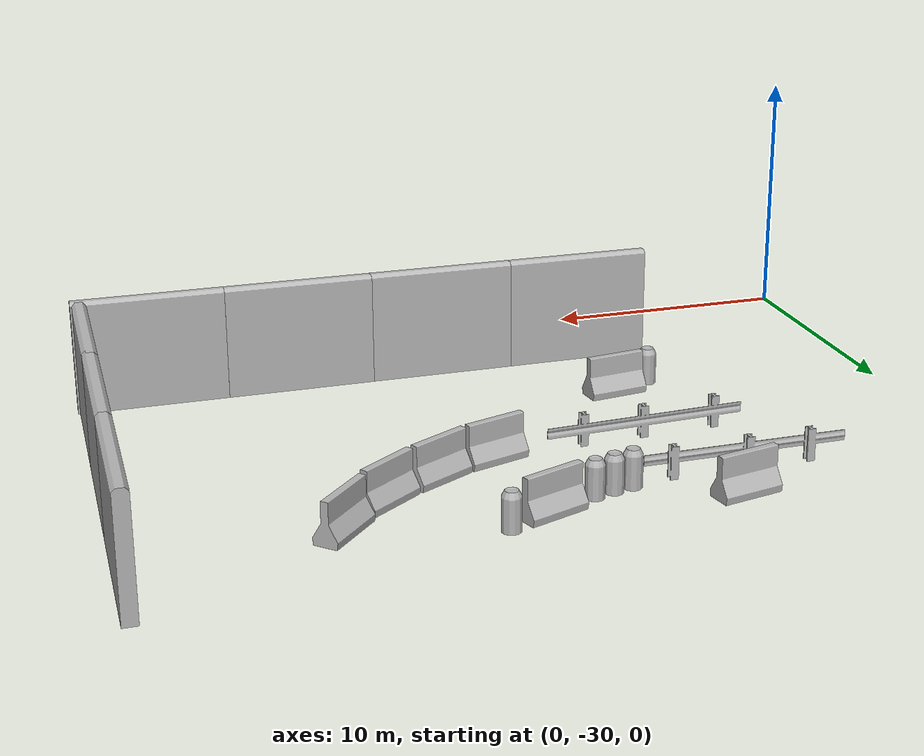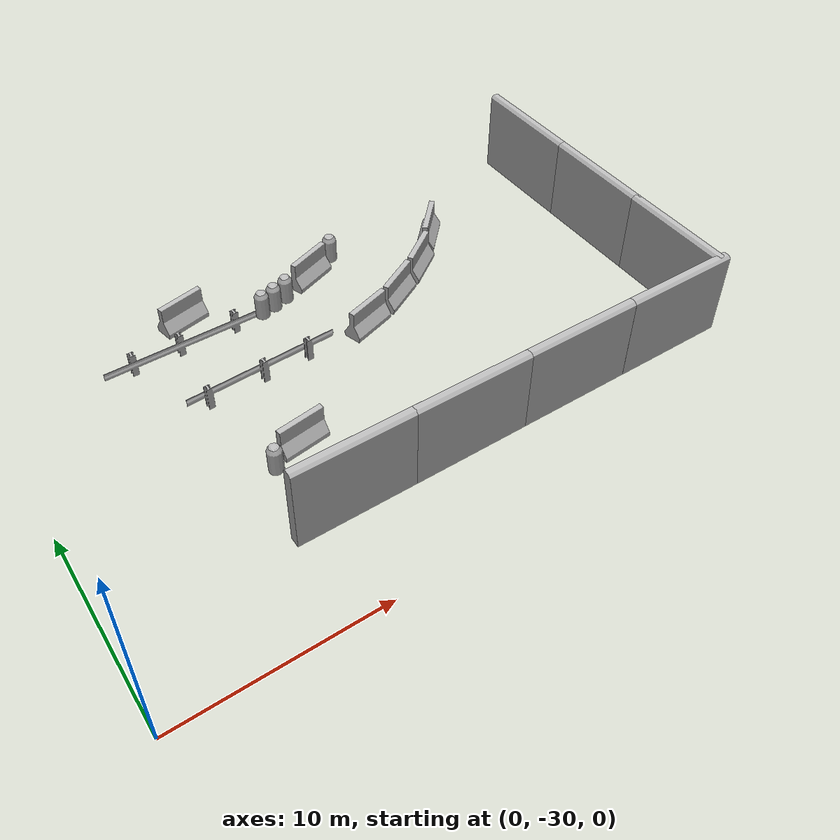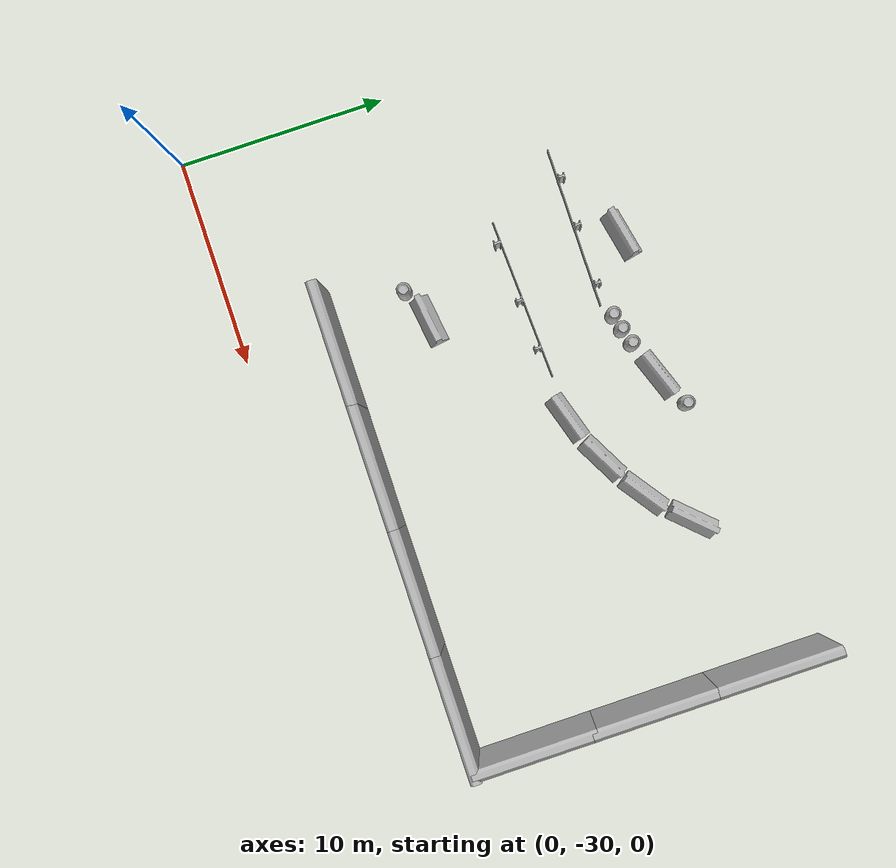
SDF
<sdf version="1.7">
 <world name="default">
  <model name="aws_robomaker_racetrack_CrashworthBucket_01_19">
   <frame name="aws_CrashworthBucket_01::__model__" attached_to="aws_CrashworthBucket_01::body">
    <pose relative_to="__model__">0 0 0 0 -0 0</pose>
   </frame>
   <link name="aws_CrashworthBucket_01::body">
    <pose relative_to="aws_CrashworthBucket_01::__model__">0 0 0 0 -0 0</pose>
    <inertial>
     <mass>5</mass>
     <inertia><ixx>1</ixx><ixy>0</ixy><ixz>0</ixz><iyy>1</iyy><iyz>0</iyz><izz>1</izz></inertia>
    </inertial>
    <visual name="visual">
     <geometry>
      <mesh>
       <uri>file://models/aws_robomaker_racetrack_CrashworthBucket_01/meshes/aws_CrashworthBucket_01_visual.DAE</uri>
      </mesh>
     </geometry>
     <material><shader type="pixel"><normal_map>__default__</normal_map></shader></material>
     <meta><layer>0</layer></meta>
    </visual>
    <collision name="collision_0">
     <geometry>
      <mesh>
       <uri>file://models/aws_robomaker_racetrack_CrashworthBucket_01/meshes/aws_CrashworthBucket_01_collision.DAE</uri>
       <scale>1 1 1</scale>
      </mesh>
     </geometry>
     <surface>
      <friction>
       <ode><mu>1</mu><mu2>1</mu2><fdir1>0 0 0</fdir1><slip1>0</slip1><slip2>0</slip2></ode>
       <torsional>
        <coefficient>1</coefficient>
        <patch_radius>0</patch_radius>
        <surface_radius>0</surface_radius>
        <use_patch_radius>1</use_patch_radius>
        <ode><slip>0</slip></ode>
       </torsional>
      </friction>
      <bounce><restitution_coefficient>0</restitution_coefficient><threshold>1e+06</threshold></bounce>
      <contact>
       <collide_without_contact>0</collide_without_contact>
       <collide_without_contact_bitmask>1</collide_without_contact_bitmask>
       <collide_bitmask>1</collide_bitmask>
       <ode>
        <soft_cfm>0</soft_cfm>
        <soft_erp>0.2</soft_erp>
        <kp>1e+13</kp>
        <kd>1</kd>
        <max_vel>0.01</max_vel>
        <min_depth>0</min_depth>
       </ode>
       <bullet>
        <split_impulse>1</split_impulse>
        <split_impulse_penetration_threshold>-0.01</split_impulse_penetration_threshold>
        <soft_cfm>0</soft_cfm>
        <soft_erp>0.2</soft_erp>
        <kp>1e+13</kp>
        <kd>1</kd>
       </bullet>
      </contact>
     </surface>
    </collision>
   </link>
   <static>1</static>
   <pose>18.3999 -10.9106 0.054 0 -0 0</pose>
  </model>
  <model name="aws_robomaker_racetrack_CrashworthBucket_01_22">
   <frame name="aws_CrashworthBucket_01::__model__" attached_to="aws_CrashworthBucket_01::body">
    <pose relative_to="__model__">0 0 0 0 -0 0</pose>
   </frame>
   <link name="aws_CrashworthBucket_01::body">
    <pose relative_to="aws_CrashworthBucket_01::__model__">0 0 0 0 -0 0</pose>
    <inertial>
     <mass>5</mass>
     <inertia><ixx>1</ixx><ixy>0</ixy><ixz>0</ixz><iyy>1</iyy><iyz>0</iyz><izz>1</izz></inertia>
    </inertial>
    <visual name="visual">
     <geometry>
      <mesh>
       <uri>file://models/aws_robomaker_racetrack_CrashworthBucket_01/meshes/aws_CrashworthBucket_01_visual.DAE</uri>
      </mesh>
     </geometry>
     <material><shader type="pixel"><normal_map>__default__</normal_map></shader></material>
     <meta><layer>0</layer></meta>
    </visual>
    <collision name="collision_0">
     <geometry>
      <mesh>
       <uri>file://models/aws_robomaker_racetrack_CrashworthBucket_01/meshes/aws_CrashworthBucket_01_collision.DAE</uri>
       <scale>1 1 1</scale>
      </mesh>
     </geometry>
     <surface>
      <friction>
       <ode><mu>1</mu><mu2>1</mu2><fdir1>0 0 0</fdir1><slip1>0</slip1><slip2>0</slip2></ode>
       <torsional>
        <coefficient>1</coefficient>
        <patch_radius>0</patch_radius>
        <surface_radius>0</surface_radius>
        <use_patch_radius>1</use_patch_radius>
        <ode><slip>0</slip></ode>
       </torsional>
      </friction>
      <bounce><restitution_coefficient>0</restitution_coefficient><threshold>1e+06</threshold></bounce>
      <contact>
       <collide_without_contact>0</collide_without_contact>
       <collide_without_contact_bitmask>1</collide_without_contact_bitmask>
       <collide_bitmask>1</collide_bitmask>
       <ode>
        <soft_cfm>0</soft_cfm>
        <soft_erp>0.2</soft_erp>
        <kp>1e+13</kp>
        <kd>1</kd>
        <max_vel>0.01</max_vel>
        <min_depth>0</min_depth>
       </ode>
       <bullet>
        <split_impulse>1</split_impulse>
        <split_impulse_penetration_threshold>-0.01</split_impulse_penetration_threshold>
        <soft_cfm>0</soft_cfm>
        <soft_erp>0.2</soft_erp>
        <kp>1e+13</kp>
        <kd>1</kd>
       </bullet>
      </contact>
     </surface>
    </collision>
   </link>
   <static>1</static>
   <pose>14.1427 -12.6734 0.054 0 -0 0</pose>
  </model>
  <model name="aws_robomaker_racetrack_CrashworthBucket_01_23">
   <frame name="aws_CrashworthBucket_01::__model__" attached_to="aws_CrashworthBucket_01::body">
    <pose relative_to="__model__">0 0 0 0 -0 0</pose>
   </frame>
   <link name="aws_CrashworthBucket_01::body">
    <pose relative_to="aws_CrashworthBucket_01::__model__">0 0 0 0 -0 0</pose>
    <inertial>
     <mass>5</mass>
     <inertia><ixx>1</ixx><ixy>0</ixy><ixz>0</ixz><iyy>1</iyy><iyz>0</iyz><izz>1</izz></inertia>
    </inertial>
    <visual name="visual">
     <geometry>
      <mesh>
       <uri>file://models/aws_robomaker_racetrack_CrashworthBucket_01/meshes/aws_CrashworthBucket_01_visual.DAE</uri>
      </mesh>
     </geometry>
     <material><shader type="pixel"><normal_map>__default__</normal_map></shader></material>
     <meta><layer>0</layer></meta>
    </visual>
    <collision name="collision_0">
     <geometry>
      <mesh>
       <uri>file://models/aws_robomaker_racetrack_CrashworthBucket_01/meshes/aws_CrashworthBucket_01_collision.DAE</uri>
       <scale>1 1 1</scale>
      </mesh>
     </geometry>
     <surface>
      <friction>
       <ode><mu>1</mu><mu2>1</mu2><fdir1>0 0 0</fdir1><slip1>0</slip1><slip2>0</slip2></ode>
       <torsional>
        <coefficient>1</coefficient>
        <patch_radius>0</patch_radius>
        <surface_radius>0</surface_radius>
        <use_patch_radius>1</use_patch_radius>
        <ode><slip>0</slip></ode>
       </torsional>
      </friction>
      <bounce><restitution_coefficient>0</restitution_coefficient><threshold>1e+06</threshold></bounce>
      <contact>
       <collide_without_contact>0</collide_without_contact>
       <collide_without_contact_bitmask>1</collide_without_contact_bitmask>
       <collide_bitmask>1</collide_bitmask>
       <ode>
        <soft_cfm>0</soft_cfm>
        <soft_erp>0.2</soft_erp>
        <kp>1e+13</kp>
        <kd>1</kd>
        <max_vel>0.01</max_vel>
        <min_depth>0</min_depth>
       </ode>
       <bullet>
        <split_impulse>1</split_impulse>
        <split_impulse_penetration_threshold>-0.01</split_impulse_penetration_threshold>
        <soft_cfm>0</soft_cfm>
        <soft_erp>0.2</soft_erp>
        <kp>1e+13</kp>
        <kd>1</kd>
       </bullet>
      </contact>
     </surface>
    </collision>
   </link>
   <static>1</static>
   <pose>14.9254 -12.4456 0.054 0 -0 0</pose>
  </model>
  <model name="aws_robomaker_racetrack_CrashworthBucket_01_25">
   <frame name="aws_CrashworthBucket_01::__model__" attached_to="aws_CrashworthBucket_01::body">
    <pose relative_to="__model__">0 0 0 0 -0 0</pose>
   </frame>
   <link name="aws_CrashworthBucket_01::body">
    <pose relative_to="aws_CrashworthBucket_01::__model__">0 0 0 0 -0 0</pose>
    <inertial>
     <mass>5</mass>
     <inertia><ixx>1</ixx><ixy>0</ixy><ixz>0</ixz><iyy>1</iyy><iyz>0</iyz><izz>1</izz></inertia>
    </inertial>
    <visual name="visual">
     <geometry>
      <mesh>
       <uri>file://models/aws_robomaker_racetrack_CrashworthBucket_01/meshes/aws_CrashworthBucket_01_visual.DAE</uri>
      </mesh>
     </geometry>
     <material><shader type="pixel"><normal_map>__default__</normal_map></shader></material>
     <meta><layer>0</layer></meta>
    </visual>
    <collision name="collision_0">
     <geometry>
      <mesh>
       <uri>file://models/aws_robomaker_racetrack_CrashworthBucket_01/meshes/aws_CrashworthBucket_01_collision.DAE</uri>
       <scale>1 1 1</scale>
      </mesh>
     </geometry>
     <surface>
      <friction>
       <ode><mu>1</mu><mu2>1</mu2><fdir1>0 0 0</fdir1><slip1>0</slip1><slip2>0</slip2></ode>
       <torsional>
        <coefficient>1</coefficient>
        <patch_radius>0</patch_radius>
        <surface_radius>0</surface_radius>
        <use_patch_radius>1</use_patch_radius>
        <ode><slip>0</slip></ode>
       </torsional>
      </friction>
      <bounce><restitution_coefficient>0</restitution_coefficient><threshold>1e+06</threshold></bounce>
      <contact>
       <collide_without_contact>0</collide_without_contact>
       <collide_without_contact_bitmask>1</collide_without_contact_bitmask>
       <collide_bitmask>1</collide_bitmask>
       <ode>
        <soft_cfm>0</soft_cfm>
        <soft_erp>0.2</soft_erp>
        <kp>1e+13</kp>
        <kd>1</kd>
        <max_vel>0.01</max_vel>
        <min_depth>0</min_depth>
       </ode>
       <bullet>
        <split_impulse>1</split_impulse>
        <split_impulse_penetration_threshold>-0.01</split_impulse_penetration_threshold>
        <soft_cfm>0</soft_cfm>
        <soft_erp>0.2</soft_erp>
        <kp>1e+13</kp>
        <kd>1</kd>
       </bullet>
      </contact>
     </surface>
    </collision>
   </link>
   <static>1</static>
   <pose>13.3868 -12.8508 0.054 0 -0 0</pose>
  </model>
  <model name="aws_robomaker_racetrack_CrashworthBucket_01_26">
   <frame name="aws_CrashworthBucket_01::__model__" attached_to="aws_CrashworthBucket_01::body">
    <pose relative_to="__model__">0 0 0 0 -0 0</pose>
   </frame>
   <link name="aws_CrashworthBucket_01::body">
    <pose relative_to="aws_CrashworthBucket_01::__model__">0 0 0 0 -0 0</pose>
    <inertial>
     <mass>5</mass>
     <inertia><ixx>1</ixx><ixy>0</ixy><ixz>0</ixz><iyy>1</iyy><iyz>0</iyz><izz>1</izz></inertia>
    </inertial>
    <visual name="visual">
     <geometry>
      <mesh>
       <uri>file://models/aws_robomaker_racetrack_CrashworthBucket_01/meshes/aws_CrashworthBucket_01_visual.DAE</uri>
      </mesh>
     </geometry>
     <material><shader type="pixel"><normal_map>__default__</normal_map></shader></material>
     <meta><layer>0</layer></meta>
    </visual>
    <collision name="collision_0">
     <geometry>
      <mesh>
       <uri>file://models/aws_robomaker_racetrack_CrashworthBucket_01/meshes/aws_CrashworthBucket_01_collision.DAE</uri>
       <scale>1 1 1</scale>
      </mesh>
     </geometry>
     <surface>
      <friction>
       <ode><mu>1</mu><mu2>1</mu2><fdir1>0 0 0</fdir1><slip1>0</slip1><slip2>0</slip2></ode>
       <torsional>
        <coefficient>1</coefficient>
        <patch_radius>0</patch_radius>
        <surface_radius>0</surface_radius>
        <use_patch_radius>1</use_patch_radius>
        <ode><slip>0</slip></ode>
       </torsional>
      </friction>
      <bounce><restitution_coefficient>0</restitution_coefficient><threshold>1e+06</threshold></bounce>
      <contact>
       <collide_without_contact>0</collide_without_contact>
       <collide_without_contact_bitmask>1</collide_without_contact_bitmask>
       <collide_bitmask>1</collide_bitmask>
       <ode>
        <soft_cfm>0</soft_cfm>
        <soft_erp>0.2</soft_erp>
        <kp>1e+13</kp>
        <kd>1</kd>
        <max_vel>0.01</max_vel>
        <min_depth>0</min_depth>
       </ode>
       <bullet>
        <split_impulse>1</split_impulse>
        <split_impulse_penetration_threshold>-0.01</split_impulse_penetration_threshold>
        <soft_cfm>0</soft_cfm>
        <soft_erp>0.2</soft_erp>
        <kp>1e+13</kp>
        <kd>1</kd>
       </bullet>
      </contact>
     </surface>
    </collision>
   </link>
   <static>1</static>
   <pose>9.22311 -21.8198 0.054 0 -0 0</pose>
  </model>
  <model name="aws_robomaker_racetrack_Fence_01_07">
   <frame name="aws_Fence_01::__model__" attached_to="aws_Fence_01::body">
    <pose relative_to="__model__">0 0 0 0 -0 0</pose>
   </frame>
   <link name="aws_Fence_01::body">
    <pose relative_to="aws_Fence_01::__model__">0 0 0 0 -0 0</pose>
    <inertial>
     <mass>5</mass>
     <inertia><ixx>1</ixx><ixy>0</ixy><ixz>0</ixz><iyy>1</iyy><iyz>0</iyz><izz>1</izz></inertia>
    </inertial>
    <visual name="visual">
     <geometry>
      <mesh><uri>file://models/aws_robomaker_racetrack_Fence_01/meshes/aws_Fence_01_visual.DAE</uri></mesh>
     </geometry>
     <material><shader type="pixel"><normal_map>__default__</normal_map></shader></material>
     <meta><layer>0</layer></meta>
    </visual>
    <collision name="collision_0">
     <geometry>
      <mesh>
       <uri>file://models/aws_robomaker_racetrack_Fence_01/meshes/aws_Fence_01_collision.DAE</uri>
       <scale>1 1 1</scale>
      </mesh>
     </geometry>
     <surface>
      <friction>
       <ode><mu>1</mu><mu2>1</mu2><fdir1>0 0 0</fdir1><slip1>0</slip1><slip2>0</slip2></ode>
       <torsional>
        <coefficient>1</coefficient>
        <patch_radius>0</patch_radius>
        <surface_radius>0</surface_radius>
        <use_patch_radius>1</use_patch_radius>
        <ode><slip>0</slip></ode>
       </torsional>
      </friction>
      <bounce><restitution_coefficient>0</restitution_coefficient><threshold>1e+06</threshold></bounce>
      <contact>
       <collide_without_contact>0</collide_without_contact>
       <collide_without_contact_bitmask>1</collide_without_contact_bitmask>
       <collide_bitmask>1</collide_bitmask>
       <ode>
        <soft_cfm>0</soft_cfm>
        <soft_erp>0.2</soft_erp>
        <kp>1e+13</kp>
        <kd>1</kd>
        <max_vel>0.01</max_vel>
        <min_depth>0</min_depth>
       </ode>
       <bullet>
        <split_impulse>1</split_impulse>
        <split_impulse_penetration_threshold>-0.01</split_impulse_penetration_threshold>
        <soft_cfm>0</soft_cfm>
        <soft_erp>0.2</soft_erp>
        <kp>1e+13</kp>
        <kd>1</kd>
       </bullet>
      </contact>
     </surface>
    </collision>
   </link>
   <static>1</static>
   <pose>11.3643 -16.8139 0.054 0 0 -1.5255</pose>
  </model>
  <model name="aws_robomaker_racetrack_Fence_01_11">
   <frame name="aws_Fence_01::__model__" attached_to="aws_Fence_01::body">
    <pose relative_to="__model__">0 0 0 0 -0 0</pose>
   </frame>
   <link name="aws_Fence_01::body">
    <pose relative_to="aws_Fence_01::__model__">0 0 0 0 -0 0</pose>
    <inertial>
     <mass>5</mass>
     <inertia><ixx>1</ixx><ixy>0</ixy><ixz>0</ixz><iyy>1</iyy><iyz>0</iyz><izz>1</izz></inertia>
    </inertial>
    <visual name="visual">
     <geometry>
      <mesh><uri>file://models/aws_robomaker_racetrack_Fence_01/meshes/aws_Fence_01_visual.DAE</uri></mesh>
     </geometry>
     <material><shader type="pixel"><normal_map>__default__</normal_map></shader></material>
     <meta><layer>0</layer></meta>
    </visual>
    <collision name="collision_0">
     <geometry>
      <mesh>
       <uri>file://models/aws_robomaker_racetrack_Fence_01/meshes/aws_Fence_01_collision.DAE</uri>
       <scale>1 1 1</scale>
      </mesh>
     </geometry>
     <surface>
      <friction>
       <ode><mu>1</mu><mu2>1</mu2><fdir1>0 0 0</fdir1><slip1>0</slip1><slip2>0</slip2></ode>
       <torsional>
        <coefficient>1</coefficient>
        <patch_radius>0</patch_radius>
        <surface_radius>0</surface_radius>
        <use_patch_radius>1</use_patch_radius>
        <ode><slip>0</slip></ode>
       </torsional>
      </friction>
      <bounce><restitution_coefficient>0</restitution_coefficient><threshold>1e+06</threshold></bounce>
      <contact>
       <collide_without_contact>0</collide_without_contact>
       <collide_without_contact_bitmask>1</collide_without_contact_bitmask>
       <collide_bitmask>1</collide_bitmask>
       <ode>
        <soft_cfm>0</soft_cfm>
        <soft_erp>0.2</soft_erp>
        <kp>1e+13</kp>
        <kd>1</kd>
        <max_vel>0.01</max_vel>
        <min_depth>0</min_depth>
       </ode>
       <bullet>
        <split_impulse>1</split_impulse>
        <split_impulse_penetration_threshold>-0.01</split_impulse_penetration_threshold>
        <soft_cfm>0</soft_cfm>
        <soft_erp>0.2</soft_erp>
        <kp>1e+13</kp>
        <kd>1</kd>
       </bullet>
      </contact>
     </surface>
    </collision>
   </link>
   <static>1</static>
   <pose>8.89898 -13.1346 0.054638 0 -0 1.57268</pose>
  </model>
  <model name="aws_robomaker_racetrack_StonePier_01_17">
   <frame name="aws_StonePier_01::__model__" attached_to="aws_StonePier_01::body">
    <pose relative_to="__model__">0 0 0 0 -0 0</pose>
   </frame>
   <link name="aws_StonePier_01::body">
    <pose relative_to="aws_StonePier_01::__model__">0 0 0 0 -0 0</pose>
    <inertial>
     <mass>10</mass>
     <inertia><ixx>0</ixx><ixy>0</ixy><ixz>0</ixz><iyy>0</iyy><iyz>0</iyz><izz>0</izz></inertia>
    </inertial>
    <visual name="visual">
     <geometry>
      <mesh><uri>file://models/aws_robomaker_racetrack_StonePier_01/meshes/aws_StonePier_01_visual.DAE</uri></mesh>
     </geometry>
     <material><shader type="pixel"><normal_map>__default__</normal_map></shader></material>
     <meta><layer>0</layer></meta>
    </visual>
    <collision name="collision_0">
     <geometry>
      <mesh>
       <uri>file://models/aws_robomaker_racetrack_StonePier_01/meshes/aws_StonePier_01_collision.DAE</uri>
       <scale>1 1 1</scale>
      </mesh>
     </geometry>
     <surface>
      <friction>
       <ode><mu>1</mu><mu2>1</mu2><fdir1>0 0 0</fdir1><slip1>0</slip1><slip2>0</slip2></ode>
       <torsional>
        <coefficient>1</coefficient>
        <patch_radius>0</patch_radius>
        <surface_radius>0</surface_radius>
        <use_patch_radius>1</use_patch_radius>
        <ode><slip>0</slip></ode>
       </torsional>
      </friction>
      <bounce><restitution_coefficient>0</restitution_coefficient><threshold>1e+06</threshold></bounce>
      <contact>
       <collide_without_contact>0</collide_without_contact>
       <collide_without_contact_bitmask>1</collide_without_contact_bitmask>
       <collide_bitmask>1</collide_bitmask>
       <ode>
        <soft_cfm>0</soft_cfm>
        <soft_erp>0.2</soft_erp>
        <kp>1e+13</kp>
        <kd>1</kd>
        <max_vel>0.01</max_vel>
        <min_depth>0</min_depth>
       </ode>
       <bullet>
        <split_impulse>1</split_impulse>
        <split_impulse_penetration_threshold>-0.01</split_impulse_penetration_threshold>
        <soft_cfm>0</soft_cfm>
        <soft_erp>0.2</soft_erp>
        <kp>1e+13</kp>
        <kd>1</kd>
       </bullet>
      </contact>
     </surface>
    </collision>
   </link>
   <static>1</static>
   <pose>16.7061 -11.7058 0.054 0 0 -2.7953</pose>
  </model>
  <model name="aws_robomaker_racetrack_StonePier_01_19">
   <frame name="aws_StonePier_01::__model__" attached_to="aws_StonePier_01::body">
    <pose relative_to="__model__">0 0 0 0 -0 0</pose>
   </frame>
   <link name="aws_StonePier_01::body">
    <pose relative_to="aws_StonePier_01::__model__">0 0 0 0 -0 0</pose>
    <inertial>
     <mass>10</mass>
     <inertia><ixx>0</ixx><ixy>0</ixy><ixz>0</ixz><iyy>0</iyy><iyz>0</iyz><izz>0</izz></inertia>
    </inertial>
    <visual name="visual">
     <geometry>
      <mesh><uri>file://models/aws_robomaker_racetrack_StonePier_01/meshes/aws_StonePier_01_visual.DAE</uri></mesh>
     </geometry>
     <material><shader type="pixel"><normal_map>__default__</normal_map></shader></material>
     <meta><layer>0</layer></meta>
    </visual>
    <collision name="collision_0">
     <geometry>
      <mesh>
       <uri>file://models/aws_robomaker_racetrack_StonePier_01/meshes/aws_StonePier_01_collision.DAE</uri>
       <scale>1 1 1</scale>
      </mesh>
     </geometry>
     <surface>
      <friction>
       <ode><mu>1</mu><mu2>1</mu2><fdir1>0 0 0</fdir1><slip1>0</slip1><slip2>0</slip2></ode>
       <torsional>
        <coefficient>1</coefficient>
        <patch_radius>0</patch_radius>
        <surface_radius>0</surface_radius>
        <use_patch_radius>1</use_patch_radius>
        <ode><slip>0</slip></ode>
       </torsional>
      </friction>
      <bounce><restitution_coefficient>0</restitution_coefficient><threshold>1e+06</threshold></bounce>
      <contact>
       <collide_without_contact>0</collide_without_contact>
       <collide_without_contact_bitmask>1</collide_without_contact_bitmask>
       <collide_bitmask>1</collide_bitmask>
       <ode>
        <soft_cfm>0</soft_cfm>
        <soft_erp>0.2</soft_erp>
        <kp>1e+13</kp>
        <kd>1</kd>
        <max_vel>0.01</max_vel>
        <min_depth>0</min_depth>
       </ode>
       <bullet>
        <split_impulse>1</split_impulse>
        <split_impulse_penetration_threshold>-0.01</split_impulse_penetration_threshold>
        <soft_cfm>0</soft_cfm>
        <soft_erp>0.2</soft_erp>
        <kp>1e+13</kp>
        <kd>1</kd>
       </bullet>
      </contact>
     </surface>
    </collision>
   </link>
   <static>1</static>
   <pose>9.84486 -11.2119 0.054 0 0 -2.93657</pose>
  </model>
  <model name="aws_robomaker_racetrack_StonePier_01_20">
   <frame name="aws_StonePier_01::__model__" attached_to="aws_StonePier_01::body">
    <pose relative_to="__model__">0 0 0 0 -0 0</pose>
   </frame>
   <link name="aws_StonePier_01::body">
    <pose relative_to="aws_StonePier_01::__model__">0 0 0 0 -0 0</pose>
    <inertial>
     <mass>10</mass>
     <inertia><ixx>0</ixx><ixy>0</ixy><ixz>0</ixz><iyy>0</iyy><iyz>0</iyz><izz>0</izz></inertia>
    </inertial>
    <visual name="visual">
     <geometry>
      <mesh><uri>file://models/aws_robomaker_racetrack_StonePier_01/meshes/aws_StonePier_01_visual.DAE</uri></mesh>
     </geometry>
     <material><shader type="pixel"><normal_map>__default__</normal_map></shader></material>
     <meta><layer>0</layer></meta>
    </visual>
    <collision name="collision_0">
     <geometry>
      <mesh>
       <uri>file://models/aws_robomaker_racetrack_StonePier_01/meshes/aws_StonePier_01_collision.DAE</uri>
       <scale>1 1 1</scale>
      </mesh>
     </geometry>
     <surface>
      <friction>
       <ode><mu>1</mu><mu2>1</mu2><fdir1>0 0 0</fdir1><slip1>0</slip1><slip2>0</slip2></ode>
       <torsional>
        <coefficient>1</coefficient>
        <patch_radius>0</patch_radius>
        <surface_radius>0</surface_radius>
        <use_patch_radius>1</use_patch_radius>
        <ode><slip>0</slip></ode>
       </torsional>
      </friction>
      <bounce><restitution_coefficient>0</restitution_coefficient><threshold>1e+06</threshold></bounce>
      <contact>
       <collide_without_contact>0</collide_without_contact>
       <collide_without_contact_bitmask>1</collide_without_contact_bitmask>
       <collide_bitmask>1</collide_bitmask>
       <ode>
        <soft_cfm>0</soft_cfm>
        <soft_erp>0.2</soft_erp>
        <kp>1e+13</kp>
        <kd>1</kd>
        <max_vel>0.01</max_vel>
        <min_depth>0</min_depth>
       </ode>
       <bullet>
        <split_impulse>1</split_impulse>
        <split_impulse_penetration_threshold>-0.01</split_impulse_penetration_threshold>
        <soft_cfm>0</soft_cfm>
        <soft_erp>0.2</soft_erp>
        <kp>1e+13</kp>
        <kd>1</kd>
       </bullet>
      </contact>
     </surface>
    </collision>
   </link>
   <static>1</static>
   <pose>10.8625 -21.1556 0.054 0 -0 0.135159</pose>
  </model>
  <model name="aws_robomaker_racetrack_StonePier_01_21">
   <frame name="aws_StonePier_01::__model__" attached_to="aws_StonePier_01::body">
    <pose relative_to="__model__">0 0 0 0 -0 0</pose>
   </frame>
   <link name="aws_StonePier_01::body">
    <pose relative_to="aws_StonePier_01::__model__">0 0 0 0 -0 0</pose>
    <inertial>
     <mass>10</mass>
     <inertia><ixx>0</ixx><ixy>0</ixy><ixz>0</ixz><iyy>0</iyy><iyz>0</iyz><izz>0</izz></inertia>
    </inertial>
    <visual name="visual">
     <geometry>
      <mesh><uri>file://models/aws_robomaker_racetrack_StonePier_01/meshes/aws_StonePier_01_visual.DAE</uri></mesh>
     </geometry>
     <material><shader type="pixel"><normal_map>__default__</normal_map></shader></material>
     <meta><layer>0</layer></meta>
    </visual>
    <collision name="collision_0">
     <geometry>
      <mesh>
       <uri>file://models/aws_robomaker_racetrack_StonePier_01/meshes/aws_StonePier_01_collision.DAE</uri>
       <scale>1 1 1</scale>
      </mesh>
     </geometry>
     <surface>
      <friction>
       <ode><mu>1</mu><mu2>1</mu2><fdir1>0 0 0</fdir1><slip1>0</slip1><slip2>0</slip2></ode>
       <torsional>
        <coefficient>1</coefficient>
        <patch_radius>0</patch_radius>
        <surface_radius>0</surface_radius>
        <use_patch_radius>1</use_patch_radius>
        <ode><slip>0</slip></ode>
       </torsional>
      </friction>
      <bounce><restitution_coefficient>0</restitution_coefficient><threshold>1e+06</threshold></bounce>
      <contact>
       <collide_without_contact>0</collide_without_contact>
       <collide_without_contact_bitmask>1</collide_without_contact_bitmask>
       <collide_bitmask>1</collide_bitmask>
       <ode>
        <soft_cfm>0</soft_cfm>
        <soft_erp>0.2</soft_erp>
        <kp>1e+13</kp>
        <kd>1</kd>
        <max_vel>0.01</max_vel>
        <min_depth>0</min_depth>
       </ode>
       <bullet>
        <split_impulse>1</split_impulse>
        <split_impulse_penetration_threshold>-0.01</split_impulse_penetration_threshold>
        <soft_cfm>0</soft_cfm>
        <soft_erp>0.2</soft_erp>
        <kp>1e+13</kp>
        <kd>1</kd>
       </bullet>
      </contact>
     </surface>
    </collision>
   </link>
   <static>1</static>
   <pose>17.2914 -16.4156 0.054 0 -0 0.298911</pose>
  </model>
  <model name="aws_robomaker_racetrack_StonePier_01_22">
   <frame name="aws_StonePier_01::__model__" attached_to="aws_StonePier_01::body">
    <pose relative_to="__model__">0 0 0 0 -0 0</pose>
   </frame>
   <link name="aws_StonePier_01::body">
    <pose relative_to="aws_StonePier_01::__model__">0 0 0 0 -0 0</pose>
    <inertial>
     <mass>10</mass>
     <inertia><ixx>0</ixx><ixy>0</ixy><ixz>0</ixz><iyy>0</iyy><iyz>0</iyz><izz>0</izz></inertia>
    </inertial>
    <visual name="visual">
     <geometry>
      <mesh><uri>file://models/aws_robomaker_racetrack_StonePier_01/meshes/aws_StonePier_01_visual.DAE</uri></mesh>
     </geometry>
     <material><shader type="pixel"><normal_map>__default__</normal_map></shader></material>
     <meta><layer>0</layer></meta>
    </visual>
    <collision name="collision_0">
     <geometry>
      <mesh>
       <uri>file://models/aws_robomaker_racetrack_StonePier_01/meshes/aws_StonePier_01_collision.DAE</uri>
       <scale>1 1 1</scale>
      </mesh>
     </geometry>
     <surface>
      <friction>
       <ode><mu>1</mu><mu2>1</mu2><fdir1>0 0 0</fdir1><slip1>0</slip1><slip2>0</slip2></ode>
       <torsional>
        <coefficient>1</coefficient>
        <patch_radius>0</patch_radius>
        <surface_radius>0</surface_radius>
        <use_patch_radius>1</use_patch_radius>
        <ode><slip>0</slip></ode>
       </torsional>
      </friction>
      <bounce><restitution_coefficient>0</restitution_coefficient><threshold>1e+06</threshold></bounce>
      <contact>
       <collide_without_contact>0</collide_without_contact>
       <collide_without_contact_bitmask>1</collide_without_contact_bitmask>
       <collide_bitmask>1</collide_bitmask>
       <ode>
        <soft_cfm>0</soft_cfm>
        <soft_erp>0.2</soft_erp>
        <kp>1e+13</kp>
        <kd>1</kd>
        <max_vel>0.01</max_vel>
        <min_depth>0</min_depth>
       </ode>
       <bullet>
        <split_impulse>1</split_impulse>
        <split_impulse_penetration_threshold>-0.01</split_impulse_penetration_threshold>
        <soft_cfm>0</soft_cfm>
        <soft_erp>0.2</soft_erp>
        <kp>1e+13</kp>
        <kd>1</kd>
       </bullet>
      </contact>
     </surface>
    </collision>
   </link>
   <static>1</static>
   <pose>19.6208 -15.4615 0.054 0 -0 0.489077</pose>
  </model>
  <model name="aws_robomaker_racetrack_StonePier_01_23">
   <frame name="aws_StonePier_01::__model__" attached_to="aws_StonePier_01::body">
    <pose relative_to="__model__">0 0 0 0 -0 0</pose>
   </frame>
   <link name="aws_StonePier_01::body">
    <pose relative_to="aws_StonePier_01::__model__">0 0 0 0 -0 0</pose>
    <inertial>
     <mass>10</mass>
     <inertia><ixx>0</ixx><ixy>0</ixy><ixz>0</ixz><iyy>0</iyy><iyz>0</iyz><izz>0</izz></inertia>
    </inertial>
    <visual name="visual">
     <geometry>
      <mesh><uri>file://models/aws_robomaker_racetrack_StonePier_01/meshes/aws_StonePier_01_visual.DAE</uri></mesh>
     </geometry>
     <material><shader type="pixel"><normal_map>__default__</normal_map></shader></material>
     <meta><layer>0</layer></meta>
    </visual>
    <collision name="collision_0">
     <geometry>
      <mesh>
       <uri>file://models/aws_robomaker_racetrack_StonePier_01/meshes/aws_StonePier_01_collision.DAE</uri>
       <scale>1 1 1</scale>
      </mesh>
     </geometry>
     <surface>
      <friction>
       <ode><mu>1</mu><mu2>1</mu2><fdir1>0 0 0</fdir1><slip1>0</slip1><slip2>0</slip2></ode>
       <torsional>
        <coefficient>1</coefficient>
        <patch_radius>0</patch_radius>
        <surface_radius>0</surface_radius>
        <use_patch_radius>1</use_patch_radius>
        <ode><slip>0</slip></ode>
       </torsional>
      </friction>
      <bounce><restitution_coefficient>0</restitution_coefficient><threshold>1e+06</threshold></bounce>
      <contact>
       <collide_without_contact>0</collide_without_contact>
       <collide_without_contact_bitmask>1</collide_without_contact_bitmask>
       <collide_bitmask>1</collide_bitmask>
       <ode>
        <soft_cfm>0</soft_cfm>
        <soft_erp>0.2</soft_erp>
        <kp>1e+13</kp>
        <kd>1</kd>
        <max_vel>0.01</max_vel>
        <min_depth>0</min_depth>
       </ode>
       <bullet>
        <split_impulse>1</split_impulse>
        <split_impulse_penetration_threshold>-0.01</split_impulse_penetration_threshold>
        <soft_cfm>0</soft_cfm>
        <soft_erp>0.2</soft_erp>
        <kp>1e+13</kp>
        <kd>1</kd>
       </bullet>
      </contact>
     </surface>
    </collision>
   </link>
   <static>1</static>
   <pose>21.7939 -14.1476 0.054 0 -0 0.61668</pose>
  </model>
  <model name="aws_robomaker_racetrack_StonePier_01_24">
   <frame name="aws_StonePier_01::__model__" attached_to="aws_StonePier_01::body">
    <pose relative_to="__model__">0 0 0 0 -0 0</pose>
   </frame>
   <link name="aws_StonePier_01::body">
    <pose relative_to="aws_StonePier_01::__model__">0 0 0 0 -0 0</pose>
    <inertial>
     <mass>10</mass>
     <inertia><ixx>0</ixx><ixy>0</ixy><ixz>0</ixz><iyy>0</iyy><iyz>0</iyz><izz>0</izz></inertia>
    </inertial>
    <visual name="visual">
     <geometry>
      <mesh><uri>file://models/aws_robomaker_racetrack_StonePier_01/meshes/aws_StonePier_01_visual.DAE</uri></mesh>
     </geometry>
     <material><shader type="pixel"><normal_map>__default__</normal_map></shader></material>
     <meta><layer>0</layer></meta>
    </visual>
    <collision name="collision_0">
     <geometry>
      <mesh>
       <uri>file://models/aws_robomaker_racetrack_StonePier_01/meshes/aws_StonePier_01_collision.DAE</uri>
       <scale>1 1 1</scale>
      </mesh>
     </geometry>
     <surface>
      <friction>
       <ode><mu>1</mu><mu2>1</mu2><fdir1>0 0 0</fdir1><slip1>0</slip1><slip2>0</slip2></ode>
       <torsional>
        <coefficient>1</coefficient>
        <patch_radius>0</patch_radius>
        <surface_radius>0</surface_radius>
        <use_patch_radius>1</use_patch_radius>
        <ode><slip>0</slip></ode>
       </torsional>
      </friction>
      <bounce><restitution_coefficient>0</restitution_coefficient><threshold>1e+06</threshold></bounce>
      <contact>
       <collide_without_contact>0</collide_without_contact>
       <collide_without_contact_bitmask>1</collide_without_contact_bitmask>
       <collide_bitmask>1</collide_bitmask>
       <ode>
        <soft_cfm>0</soft_cfm>
        <soft_erp>0.2</soft_erp>
        <kp>1e+13</kp>
        <kd>1</kd>
        <max_vel>0.01</max_vel>
        <min_depth>0</min_depth>
       </ode>
       <bullet>
        <split_impulse>1</split_impulse>
        <split_impulse_penetration_threshold>-0.01</split_impulse_penetration_threshold>
        <soft_cfm>0</soft_cfm>
        <soft_erp>0.2</soft_erp>
        <kp>1e+13</kp>
        <kd>1</kd>
       </bullet>
      </contact>
     </surface>
    </collision>
   </link>
   <static>1</static>
   <pose>23.6698 -12.3608 0.054 0 -0 0.810318</pose>
  </model>
  <model name="aws_robomaker_racetrack_Wall_01_17">
   <frame name="aws_Wall_01::__model__" attached_to="aws_Wall_01::body">
    <pose relative_to="__model__">0 0 0 0 -0 0</pose>
   </frame>
   <link name="aws_Wall_01::body">
    <pose relative_to="aws_Wall_01::__model__">0 0 0 0 -0 0</pose>
    <inertial>
     <mass>500</mass>
     <inertia><ixx>1</ixx><ixy>0</ixy><ixz>0</ixz><iyy>1</iyy><iyz>0</iyz><izz>1</izz></inertia>
    </inertial>
    <visual name="visual">
     <geometry>
      <mesh>
       <uri>file://models/aws_robomaker_racetrack_Wall_01/meshes/aws_Wall_01_visual.DAE</uri>
       <scale>2.59853 2.59853 2.59853</scale>
      </mesh>
     </geometry>
     <material><shader type="pixel"><normal_map>__default__</normal_map></shader></material>
     <meta><layer>1</layer></meta>
    </visual>
    <collision name="collision_0">
     <geometry>
      <mesh>
       <uri>file://models/aws_robomaker_racetrack_Wall_01/meshes/aws_Wall_01_collision.DAE</uri>
       <scale>2.59853 2.59853 2.59853</scale>
      </mesh>
     </geometry>
     <surface>
      <friction>
       <ode><mu>1</mu><mu2>1</mu2><fdir1>0 0 0</fdir1><slip1>0</slip1><slip2>0</slip2></ode>
       <torsional>
        <coefficient>1</coefficient>
        <patch_radius>0</patch_radius>
        <surface_radius>0</surface_radius>
        <use_patch_radius>1</use_patch_radius>
        <ode><slip>0</slip></ode>
       </torsional>
      </friction>
      <bounce><restitution_coefficient>0</restitution_coefficient><threshold>1e+06</threshold></bounce>
      <contact>
       <collide_without_contact>0</collide_without_contact>
       <collide_without_contact_bitmask>1</collide_without_contact_bitmask>
       <collide_bitmask>1</collide_bitmask>
       <ode>
        <soft_cfm>0</soft_cfm>
        <soft_erp>0.2</soft_erp>
        <kp>1e+13</kp>
        <kd>1</kd>
        <max_vel>0.01</max_vel>
        <min_depth>0</min_depth>
       </ode>
       <bullet>
        <split_impulse>1</split_impulse>
        <split_impulse_penetration_threshold>-0.01</split_impulse_penetration_threshold>
        <soft_cfm>0</soft_cfm>
        <soft_erp>0.2</soft_erp>
        <kp>1e+13</kp>
        <kd>1</kd>
       </bullet>
      </contact>
     </surface>
    </collision>
   </link>
   <static>1</static>
   <pose>10.9489 -25.511 0 0 -0 0</pose>
  </model>
  <model name="aws_robomaker_racetrack_Wall_01_18">
   <frame name="aws_Wall_01::__model__" attached_to="aws_Wall_01::body">
    <pose relative_to="__model__">0 0 0 0 -0 0</pose>
   </frame>
   <link name="aws_Wall_01::body">
    <pose relative_to="aws_Wall_01::__model__">0 0 0 0 -0 0</pose>
    <inertial>
     <mass>500</mass>
     <inertia><ixx>1</ixx><ixy>0</ixy><ixz>0</ixz><iyy>1</iyy><iyz>0</iyz><izz>1</izz></inertia>
    </inertial>
    <visual name="visual">
     <geometry>
      <mesh>
       <uri>file://models/aws_robomaker_racetrack_Wall_01/meshes/aws_Wall_01_visual.DAE</uri>
       <scale>2.59853 2.59853 2.59853</scale>
      </mesh>
     </geometry>
     <material><shader type="pixel"><normal_map>__default__</normal_map></shader></material>
     <meta><layer>1</layer></meta>
    </visual>
    <collision name="collision_0">
     <geometry>
      <mesh>
       <uri>file://models/aws_robomaker_racetrack_Wall_01/meshes/aws_Wall_01_collision.DAE</uri>
       <scale>2.59853 2.59853 2.59853</scale>
      </mesh>
     </geometry>
     <surface>
      <friction>
       <ode><mu>1</mu><mu2>1</mu2><fdir1>0 0 0</fdir1><slip1>0</slip1><slip2>0</slip2></ode>
       <torsional>
        <coefficient>1</coefficient>
        <patch_radius>0</patch_radius>
        <surface_radius>0</surface_radius>
        <use_patch_radius>1</use_patch_radius>
        <ode><slip>0</slip></ode>
       </torsional>
      </friction>
      <bounce><restitution_coefficient>0</restitution_coefficient><threshold>1e+06</threshold></bounce>
      <contact>
       <collide_without_contact>0</collide_without_contact>
       <collide_without_contact_bitmask>1</collide_without_contact_bitmask>
       <collide_bitmask>1</collide_bitmask>
       <ode>
        <soft_cfm>0</soft_cfm>
        <soft_erp>0.2</soft_erp>
        <kp>1e+13</kp>
        <kd>1</kd>
        <max_vel>0.01</max_vel>
        <min_depth>0</min_depth>
       </ode>
       <bullet>
        <split_impulse>1</split_impulse>
        <split_impulse_penetration_threshold>-0.01</split_impulse_penetration_threshold>
        <soft_cfm>0</soft_cfm>
        <soft_erp>0.2</soft_erp>
        <kp>1e+13</kp>
        <kd>1</kd>
       </bullet>
      </contact>
     </surface>
    </collision>
   </link>
   <static>1</static>
   <pose>16.7552 -25.5119 0 0 -0 0</pose>
  </model>
  <model name="aws_robomaker_racetrack_Wall_01_19">
   <frame name="aws_Wall_01::__model__" attached_to="aws_Wall_01::body">
    <pose relative_to="__model__">0 0 0 0 -0 0</pose>
   </frame>
   <link name="aws_Wall_01::body">
    <pose relative_to="aws_Wall_01::__model__">0 0 0 0 -0 0</pose>
    <inertial>
     <mass>500</mass>
     <inertia><ixx>1</ixx><ixy>0</ixy><ixz>0</ixz><iyy>1</iyy><iyz>0</iyz><izz>1</izz></inertia>
    </inertial>
    <visual name="visual">
     <geometry>
      <mesh>
       <uri>file://models/aws_robomaker_racetrack_Wall_01/meshes/aws_Wall_01_visual.DAE</uri>
       <scale>2.59853 2.59853 2.59853</scale>
      </mesh>
     </geometry>
     <material><shader type="pixel"><normal_map>__default__</normal_map></shader></material>
     <meta><layer>1</layer></meta>
    </visual>
    <collision name="collision_0">
     <geometry>
      <mesh>
       <uri>file://models/aws_robomaker_racetrack_Wall_01/meshes/aws_Wall_01_collision.DAE</uri>
       <scale>2.59853 2.59853 2.59853</scale>
      </mesh>
     </geometry>
     <surface>
      <friction>
       <ode><mu>1</mu><mu2>1</mu2><fdir1>0 0 0</fdir1><slip1>0</slip1><slip2>0</slip2></ode>
       <torsional>
        <coefficient>1</coefficient>
        <patch_radius>0</patch_radius>
        <surface_radius>0</surface_radius>
        <use_patch_radius>1</use_patch_radius>
        <ode><slip>0</slip></ode>
       </torsional>
      </friction>
      <bounce><restitution_coefficient>0</restitution_coefficient><threshold>1e+06</threshold></bounce>
      <contact>
       <collide_without_contact>0</collide_without_contact>
       <collide_without_contact_bitmask>1</collide_without_contact_bitmask>
       <collide_bitmask>1</collide_bitmask>
       <ode>
        <soft_cfm>0</soft_cfm>
        <soft_erp>0.2</soft_erp>
        <kp>1e+13</kp>
        <kd>1</kd>
        <max_vel>0.01</max_vel>
        <min_depth>0</min_depth>
       </ode>
       <bullet>
        <split_impulse>1</split_impulse>
        <split_impulse_penetration_threshold>-0.01</split_impulse_penetration_threshold>
        <soft_cfm>0</soft_cfm>
        <soft_erp>0.2</soft_erp>
        <kp>1e+13</kp>
        <kd>1</kd>
       </bullet>
      </contact>
     </surface>
    </collision>
   </link>
   <static>1</static>
   <pose>22.5772 -25.5071 0 0 -0 0</pose>
  </model>
  <model name="aws_robomaker_racetrack_Wall_01_20">
   <frame name="aws_Wall_01::__model__" attached_to="aws_Wall_01::body">
    <pose relative_to="__model__">0 0 0 0 -0 0</pose>
   </frame>
   <link name="aws_Wall_01::body">
    <pose relative_to="aws_Wall_01::__model__">0 0 0 0 -0 0</pose>
    <inertial>
     <mass>500</mass>
     <inertia><ixx>1</ixx><ixy>0</ixy><ixz>0</ixz><iyy>1</iyy><iyz>0</iyz><izz>1</izz></inertia>
    </inertial>
    <visual name="visual">
     <geometry>
      <mesh>
       <uri>file://models/aws_robomaker_racetrack_Wall_01/meshes/aws_Wall_01_visual.DAE</uri>
       <scale>2.59853 2.59853 2.59853</scale>
      </mesh>
     </geometry>
     <material><shader type="pixel"><normal_map>__default__</normal_map></shader></material>
     <meta><layer>1</layer></meta>
    </visual>
    <collision name="collision_0">
     <geometry>
      <mesh>
       <uri>file://models/aws_robomaker_racetrack_Wall_01/meshes/aws_Wall_01_collision.DAE</uri>
       <scale>2.59853 2.59853 2.59853</scale>
      </mesh>
     </geometry>
     <surface>
      <friction>
       <ode><mu>1</mu><mu2>1</mu2><fdir1>0 0 0</fdir1><slip1>0</slip1><slip2>0</slip2></ode>
       <torsional>
        <coefficient>1</coefficient>
        <patch_radius>0</patch_radius>
        <surface_radius>0</surface_radius>
        <use_patch_radius>1</use_patch_radius>
        <ode><slip>0</slip></ode>
       </torsional>
      </friction>
      <bounce><restitution_coefficient>0</restitution_coefficient><threshold>1e+06</threshold></bounce>
      <contact>
       <collide_without_contact>0</collide_without_contact>
       <collide_without_contact_bitmask>1</collide_without_contact_bitmask>
       <collide_bitmask>1</collide_bitmask>
       <ode>
        <soft_cfm>0</soft_cfm>
        <soft_erp>0.2</soft_erp>
        <kp>1e+13</kp>
        <kd>1</kd>
        <max_vel>0.01</max_vel>
        <min_depth>0</min_depth>
       </ode>
       <bullet>
        <split_impulse>1</split_impulse>
        <split_impulse_penetration_threshold>-0.01</split_impulse_penetration_threshold>
        <soft_cfm>0</soft_cfm>
        <soft_erp>0.2</soft_erp>
        <kp>1e+13</kp>
        <kd>1</kd>
       </bullet>
      </contact>
     </surface>
    </collision>
   </link>
   <static>1</static>
   <pose>28.3975 -25.5099 0 0 -0 0</pose>
  </model>
  <model name="aws_robomaker_racetrack_Wall_01_32">
   <frame name="aws_Wall_01::__model__" attached_to="aws_Wall_01::body">
    <pose relative_to="__model__">0 0 0 0 -0 0</pose>
   </frame>
   <link name="aws_Wall_01::body">
    <pose relative_to="aws_Wall_01::__model__">0 0 0 0 -0 0</pose>
    <inertial>
     <mass>500</mass>
     <inertia><ixx>1</ixx><ixy>0</ixy><ixz>0</ixz><iyy>1</iyy><iyz>0</iyz><izz>1</izz></inertia>
    </inertial>
    <visual name="visual">
     <geometry>
      <mesh>
       <uri>file://models/aws_robomaker_racetrack_Wall_01/meshes/aws_Wall_01_visual.DAE</uri>
       <scale>2.59853 2.59853 2.59853</scale>
      </mesh>
     </geometry>
     <material><shader type="pixel"><normal_map>__default__</normal_map></shader></material>
     <meta><layer>1</layer></meta>
    </visual>
    <collision name="collision_0">
     <geometry>
      <mesh>
       <uri>file://models/aws_robomaker_racetrack_Wall_01/meshes/aws_Wall_01_collision.DAE</uri>
       <scale>2.59853 2.59853 2.59853</scale>
      </mesh>
     </geometry>
     <surface>
      <friction>
       <ode><mu>1</mu><mu2>1</mu2><fdir1>0 0 0</fdir1><slip1>0</slip1><slip2>0</slip2></ode>
       <torsional>
        <coefficient>1</coefficient>
        <patch_radius>0</patch_radius>
        <surface_radius>0</surface_radius>
        <use_patch_radius>1</use_patch_radius>
        <ode><slip>0</slip></ode>
       </torsional>
      </friction>
      <bounce><restitution_coefficient>0</restitution_coefficient><threshold>1e+06</threshold></bounce>
      <contact>
       <collide_without_contact>0</collide_without_contact>
       <collide_without_contact_bitmask>1</collide_without_contact_bitmask>
       <collide_bitmask>1</collide_bitmask>
       <ode>
        <soft_cfm>0</soft_cfm>
        <soft_erp>0.2</soft_erp>
        <kp>1e+13</kp>
        <kd>1</kd>
        <max_vel>0.01</max_vel>
        <min_depth>0</min_depth>
       </ode>
       <bullet>
        <split_impulse>1</split_impulse>
        <split_impulse_penetration_threshold>-0.01</split_impulse_penetration_threshold>
        <soft_cfm>0</soft_cfm>
        <soft_erp>0.2</soft_erp>
        <kp>1e+13</kp>
        <kd>1</kd>
       </bullet>
      </contact>
     </surface>
    </collision>
   </link>
   <static>1</static>
   <pose>30.9522 -17.1105 0 0 -0 1.57459</pose>
  </model>
  <model name="aws_robomaker_racetrack_Wall_01_33">
   <frame name="aws_Wall_01::__model__" attached_to="aws_Wall_01::body">
    <pose relative_to="__model__">0 0 0 0 -0 0</pose>
   </frame>
   <link name="aws_Wall_01::body">
    <pose relative_to="aws_Wall_01::__model__">0 0 0 0 -0 0</pose>
    <inertial>
     <mass>500</mass>
     <inertia><ixx>1</ixx><ixy>0</ixy><ixz>0</ixz><iyy>1</iyy><iyz>0</iyz><izz>1</izz></inertia>
    </inertial>
    <visual name="visual">
     <geometry>
      <mesh>
       <uri>file://models/aws_robomaker_racetrack_Wall_01/meshes/aws_Wall_01_visual.DAE</uri>
       <scale>2.59853 2.59853 2.59853</scale>
      </mesh>
     </geometry>
     <material><shader type="pixel"><normal_map>__default__</normal_map></shader></material>
     <meta><layer>1</layer></meta>
    </visual>
    <collision name="collision_0">
     <geometry>
      <mesh>
       <uri>file://models/aws_robomaker_racetrack_Wall_01/meshes/aws_Wall_01_collision.DAE</uri>
       <scale>2.59853 2.59853 2.59853</scale>
      </mesh>
     </geometry>
     <surface>
      <friction>
       <ode><mu>1</mu><mu2>1</mu2><fdir1>0 0 0</fdir1><slip1>0</slip1><slip2>0</slip2></ode>
       <torsional>
        <coefficient>1</coefficient>
        <patch_radius>0</patch_radius>
        <surface_radius>0</surface_radius>
        <use_patch_radius>1</use_patch_radius>
        <ode><slip>0</slip></ode>
       </torsional>
      </friction>
      <bounce><restitution_coefficient>0</restitution_coefficient><threshold>1e+06</threshold></bounce>
      <contact>
       <collide_without_contact>0</collide_without_contact>
       <collide_without_contact_bitmask>1</collide_without_contact_bitmask>
       <collide_bitmask>1</collide_bitmask>
       <ode>
        <soft_cfm>0</soft_cfm>
        <soft_erp>0.2</soft_erp>
        <kp>1e+13</kp>
        <kd>1</kd>
        <max_vel>0.01</max_vel>
        <min_depth>0</min_depth>
       </ode>
       <bullet>
        <split_impulse>1</split_impulse>
        <split_impulse_penetration_threshold>-0.01</split_impulse_penetration_threshold>
        <soft_cfm>0</soft_cfm>
        <soft_erp>0.2</soft_erp>
        <kp>1e+13</kp>
        <kd>1</kd>
       </bullet>
      </contact>
     </surface>
    </collision>
   </link>
   <static>1</static>
   <pose>30.9711 -22.7005 0 0 -0 1.57459</pose>
  </model>
  <model name="aws_robomaker_racetrack_Wall_01_34">
   <frame name="aws_Wall_01::__model__" attached_to="aws_Wall_01::body">
    <pose relative_to="__model__">0 0 0 0 -0 0</pose>
   </frame>
   <link name="aws_Wall_01::body">
    <pose relative_to="aws_Wall_01::__model__">0 0 0 0 -0 0</pose>
    <inertial>
     <mass>500</mass>
     <inertia><ixx>1</ixx><ixy>0</ixy><ixz>0</ixz><iyy>1</iyy><iyz>0</iyz><izz>1</izz></inertia>
    </inertial>
    <visual name="visual">
     <geometry>
      <mesh>
       <uri>file://models/aws_robomaker_racetrack_Wall_01/meshes/aws_Wall_01_visual.DAE</uri>
       <scale>2.59853 2.59853 2.59853</scale>
      </mesh>
     </geometry>
     <material><shader type="pixel"><normal_map>__default__</normal_map></shader></material>
     <meta><layer>1</layer></meta>
    </visual>
    <collision name="collision_0">
     <geometry>
      <mesh>
       <uri>file://models/aws_robomaker_racetrack_Wall_01/meshes/aws_Wall_01_collision.DAE</uri>
       <scale>2.59853 2.59853 2.59853</scale>
      </mesh>
     </geometry>
     <surface>
      <friction>
       <ode><mu>1</mu><mu2>1</mu2><fdir1>0 0 0</fdir1><slip1>0</slip1><slip2>0</slip2></ode>
       <torsional>
        <coefficient>1</coefficient>
        <patch_radius>0</patch_radius>
        <surface_radius>0</surface_radius>
        <use_patch_radius>1</use_patch_radius>
        <ode><slip>0</slip></ode>
       </torsional>
      </friction>
      <bounce><restitution_coefficient>0</restitution_coefficient><threshold>1e+06</threshold></bounce>
      <contact>
       <collide_without_contact>0</collide_without_contact>
       <collide_without_contact_bitmask>1</collide_without_contact_bitmask>
       <collide_bitmask>1</collide_bitmask>
       <ode>
        <soft_cfm>0</soft_cfm>
        <soft_erp>0.2</soft_erp>
        <kp>1e+13</kp>
        <kd>1</kd>
        <max_vel>0.01</max_vel>
        <min_depth>0</min_depth>
       </ode>
       <bullet>
        <split_impulse>1</split_impulse>
        <split_impulse_penetration_threshold>-0.01</split_impulse_penetration_threshold>
        <soft_cfm>0</soft_cfm>
        <soft_erp>0.2</soft_erp>
        <kp>1e+13</kp>
        <kd>1</kd>
       </bullet>
      </contact>
     </surface>
    </collision>
   </link>
   <static>1</static>
   <pose>30.9317 -11.3127 0 0 -0 1.57459</pose>
  </model>
  <model name="ground_plane">
   <pose>0 0 -6.83581e+06 0 -0 0</pose>
   <link name="link">
    <pose>0 0 -1 0 -0 0</pose>
    <inertial>
     <inertia><ixx>1</ixx><ixy>0</ixy><ixz>0</ixz><iyy>1</iyy><iyz>0</iyz><izz>1</izz></inertia>
     <mass>1</mass>
    </inertial>
    <velocity>0 0 0 0 -0 0</velocity>
    <acceleration>0 0 0 0 -0 0</acceleration>
   </link>
   <scale>1 1 1</scale>
  </model>
 </world>
</sdf>
